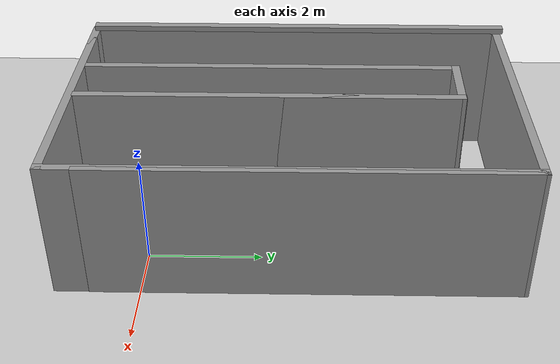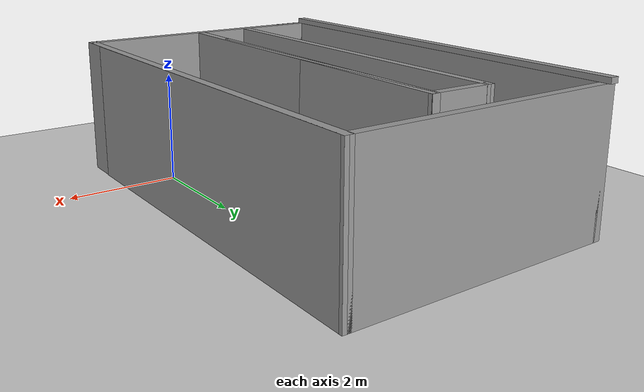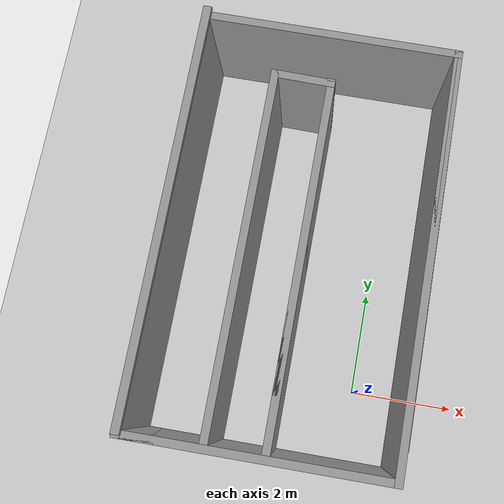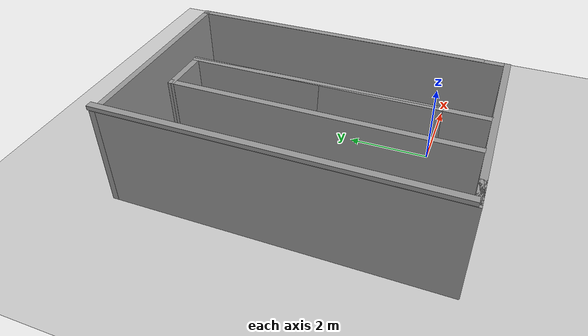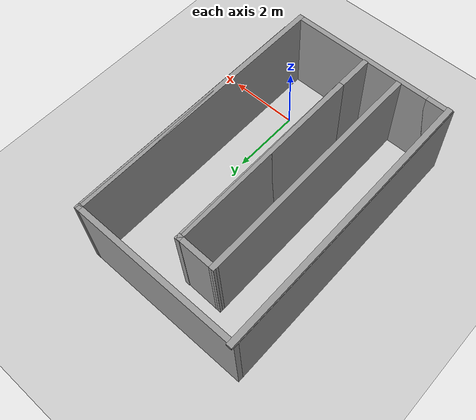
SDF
<sdf version="1.7">
 <world name="default">
  <light name="sun" type="directional">
   <pose>0 0 10 0 -0 0</pose>
   <diffuse>0.8 0.8 0.8 1</diffuse>
   <specular>0.2 0.2 0.2 1</specular>
   <attenuation>
    <range>1000</range>
    <constant>0.9</constant>
    <linear>0.01</linear>
    <quadratic>0.001</quadratic>
   </attenuation>
   <direction>-0.5 0.1 -0.9</direction>
   <spot><inner_angle>0</inner_angle><outer_angle>0</outer_angle><falloff>0</falloff></spot>
  </light>
  <model name="ground_plane">
   <static>1</static>
   <link name="link">
    <collision name="collision">
     <geometry><plane><normal>0 0 1</normal><size>100 100</size></plane></geometry>
     <surface>
      <contact><collide_bitmask>65535</collide_bitmask></contact>
      <friction><ode><mu>100</mu><mu2>50</mu2></ode></friction>
     </surface>
    </collision>
    <visual name="visual">
     <cast_shadows>0</cast_shadows>
     <geometry><plane><normal>0 0 1</normal><size>100 100</size></plane></geometry>
     <material>
      <script><uri>file://media/materials/scripts/gazebo.material</uri><name>Gazebo/Grey</name></script>
     </material>
    </visual>
   </link>
  </model>
  <gravity>0 0 -9.8</gravity>
  <magnetic_field>6e-06 2.3e-05 -4.2e-05</magnetic_field>
  <atmosphere type="adiabatic"/>
  <physics type="ode">
   <max_step_size>0.001</max_step_size>
   <real_time_factor>1</real_time_factor>
   <real_time_update_rate>1000</real_time_update_rate>
  </physics>
  <scene><ambient>0.4 0.4 0.4 1</ambient><background>0.7 0.7 0.7 1</background><shadows>1</shadows></scene>
  <audio><device>default</device></audio>
  <spherical_coordinates>
   <surface_model>EARTH_WGS84</surface_model>
   <latitude_deg>0</latitude_deg>
   <longitude_deg>0</longitude_deg>
   <elevation>0</elevation>
   <heading_deg>0</heading_deg>
  </spherical_coordinates>
  <model name="room">
   <pose>-1.54525 2.52294 0 0 -0 0</pose>
   <link name="Floor_0">
    <collision name="Floor_0_Collision">
     <geometry><box><size>0.160191 7.99019 0.1</size></box></geometry>
     <pose>0 0 0.05 0 -0 0</pose>
    </collision>
    <visual name="Floor_0_Visual">
     <pose>0 0 0.05 0 -0 0</pose>
     <geometry><box><size>0.160191 7.99019 0.1</size></box></geometry>
     <material>
      <script><uri>file://media/materials/scripts/gazebo.material</uri><name>Gazebo/Grey</name></script>
      <ambient>1 1 1 1</ambient>
     </material>
     <meta><layer>1</layer></meta>
    </visual>
    <pose>-2.41005 0.054949 2.5 0 -0 0</pose>
   </link>
   <link name="Wall_0">
    <collision name="Wall_0_Collision">
     <geometry><box><size>8 0.15 2.5</size></box></geometry>
     <pose>0 0 1.25 0 -0 0</pose>
    </collision>
    <visual name="Wall_0_Visual">
     <pose>0 0 1.25 0 -0 0</pose>
     <geometry><box><size>8 0.15 2.5</size></box></geometry>
     <material>
      <script><uri>file://media/materials/scripts/gazebo.material</uri><name>Gazebo/Grey</name></script>
      <ambient>1 1 1 1</ambient>
     </material>
     <meta><layer>0</layer></meta>
    </visual>
    <pose>-2.42505 -5.1e-05 0 0 -0 -1.5708</pose>
   </link>
   <link name="Wall_10">
    <collision name="Wall_10_Collision">
     <geometry><box><size>8 0.15 2.5</size></box></geometry>
     <pose>0 0 1.25 0 -0 0</pose>
    </collision>
    <visual name="Wall_10_Visual">
     <pose>0 0 1.25 0 -0 0</pose>
     <geometry><box><size>8 0.15 2.5</size></box></geometry>
     <material>
      <script><uri>file://media/materials/scripts/gazebo.material</uri><name>Gazebo/Grey</name></script>
      <ambient>1 1 1 1</ambient>
     </material>
     <meta><layer>0</layer></meta>
    </visual>
    <pose>2.41495 -5.1e-05 0 0 -0 1.5708</pose>
   </link>
   <link name="Wall_11">
    <collision name="Wall_11_Collision">
     <geometry><box><size>0.15 0.15 2.5</size></box></geometry>
     <pose>0 0 1.25 0 -0 0</pose>
    </collision>
    <visual name="Wall_11_Visual">
     <pose>0 0 1.25 0 -0 0</pose>
     <geometry><box><size>0.15 0.15 2.5</size></box></geometry>
     <material>
      <script><uri>file://media/materials/scripts/gazebo.material</uri><name>Gazebo/Grey</name></script>
      <ambient>1 1 1 1</ambient>
     </material>
     <meta><layer>0</layer></meta>
    </visual>
    <pose>2.41495 3.92495 0 0 -0 0</pose>
   </link>
   <link name="Wall_12">
    <collision name="Wall_12_Collision">
     <geometry><box><size>7.40001 0.15 2.5</size></box></geometry>
     <pose>0 0 1.25 0 -0 0</pose>
    </collision>
    <visual name="Wall_12_Visual">
     <pose>0 0 1.25 0 -0 0</pose>
     <geometry><box><size>7.40001 0.15 2.5</size></box></geometry>
     <material>
      <script><uri>file://media/materials/scripts/gazebo.material</uri><name>Gazebo/Grey</name></script>
      <ambient>1 1 1 1</ambient>
     </material>
     <meta><layer>0</layer></meta>
    </visual>
    <pose>2.41995 0.299949 0 0 -0 -1.56942</pose>
   </link>
   <link name="Wall_20">
    <collision name="Wall_20_Collision">
     <geometry><box><size>4.99 0.15 2.5</size></box></geometry>
     <pose>0 0 1.25 0 -0 0</pose>
    </collision>
    <visual name="Wall_20_Visual">
     <pose>0 0 1.25 0 -0 0</pose>
     <geometry><box><size>4.99 0.15 2.5</size></box></geometry>
     <material>
      <script><uri>file://media/materials/scripts/gazebo.material</uri><name>Gazebo/Grey</name></script>
      <ambient>1 1 1 1</ambient>
     </material>
     <meta><layer>0</layer></meta>
    </visual>
    <pose>-0.005051 3.92495 0 0 -0 0</pose>
   </link>
   <link name="Wall_23">
    <collision name="Wall_23_Collision">
     <geometry><box><size>6.9 0.15 2.5</size></box></geometry>
     <pose>0 0 1.25 0 -0 0</pose>
    </collision>
    <visual name="Wall_23_Visual">
     <pose>0 0 1.25 0 -0 0</pose>
     <geometry><box><size>6.9 0.15 2.5</size></box></geometry>
     <material>
      <script><uri>file://media/materials/scripts/gazebo.material</uri><name>Gazebo/Grey</name></script>
      <ambient>1 1 1 1</ambient>
     </material>
     <meta><layer>0</layer></meta>
    </visual>
    <pose>-0.925051 -0.410051 0 0 -0 1.5708</pose>
   </link>
   <link name="Wall_29">
    <collision name="Wall_29_Collision">
     <geometry><box><size>6.9 0.15 2.5</size></box></geometry>
     <pose>0 0 1.25 0 -0 0</pose>
    </collision>
    <visual name="Wall_29_Visual">
     <pose>0 0 1.25 0 -0 0</pose>
     <geometry><box><size>6.9 0.15 2.5</size></box></geometry>
     <material>
      <script><uri>file://media/materials/scripts/gazebo.material</uri><name>Gazebo/Grey</name></script>
      <ambient>1 1 1 1</ambient>
     </material>
     <meta><layer>0</layer></meta>
    </visual>
    <pose>0.144949 -0.420051 0 0 -0 1.5708</pose>
   </link>
   <link name="Wall_30">
    <collision name="Wall_30_Collision">
     <geometry><box><size>5.87 0.15 2.5</size></box></geometry>
     <pose>0 0 1.25 0 -0 0</pose>
    </collision>
    <visual name="Wall_30_Visual">
     <pose>0 0 1.25 0 -0 0</pose>
     <geometry><box><size>5.87 0.15 2.5</size></box></geometry>
     <material>
      <script><uri>file://media/materials/scripts/gazebo.material</uri><name>Gazebo/Grey</name></script>
      <ambient>1 1 1 1</ambient>
     </material>
     <meta><layer>0</layer></meta>
    </visual>
    <pose>0.144949 0.084949 0 0 -0 -1.5708</pose>
   </link>
   <link name="Wall_33">
    <collision name="Wall_33_Collision">
     <geometry><box><size>1.22019 0.15 2.5</size></box></geometry>
     <pose>0 0 1.25 0 -0 0</pose>
    </collision>
    <visual name="Wall_33_Visual">
     <pose>0 0 1.25 0 -0 0</pose>
     <geometry><box><size>1.22019 0.15 2.5</size></box></geometry>
     <material>
      <script><uri>file://media/materials/scripts/gazebo.material</uri><name>Gazebo/Grey</name></script>
      <ambient>1 1 1 1</ambient>
     </material>
     <meta><layer>0</layer></meta>
    </visual>
    <pose>-0.390051 2.95495 0 0 -0 -0.018689</pose>
   </link>
   <link name="Wall_8">
    <collision name="Wall_8_Collision">
     <geometry><box><size>0.73 0.15 2.5</size></box></geometry>
     <pose>0 0 1.25 0 -0 0</pose>
    </collision>
    <visual name="Wall_8_Visual">
     <pose>0 0 1.25 0 -0 0</pose>
     <geometry><box><size>0.73 0.15 2.5</size></box></geometry>
     <material>
      <script><uri>file://media/materials/scripts/gazebo.material</uri><name>Gazebo/Grey</name></script>
      <ambient>1 1 1 1</ambient>
     </material>
     <meta><layer>0</layer></meta>
    </visual>
    <pose>-2.12505 -3.92505 0 0 -0 3.14159</pose>
   </link>
   <link name="Wall_9">
    <collision name="Wall_9_Collision">
     <geometry><box><size>4.98 0.15 2.5</size></box></geometry>
     <pose>0 0 1.25 0 -0 0</pose>
    </collision>
    <visual name="Wall_9_Visual">
     <pose>0 0 1.25 0 -0 0</pose>
     <geometry><box><size>4.98 0.15 2.5</size></box></geometry>
     <material>
      <script><uri>file://media/materials/scripts/gazebo.material</uri><name>Gazebo/Grey</name></script>
      <ambient>1 1 1 1</ambient>
     </material>
     <meta><layer>0</layer></meta>
    </visual>
    <pose>-5.1e-05 -3.92505 0 0 -0 0</pose>
   </link>
   <static>1</static>
  </model>
 </world>
</sdf>
